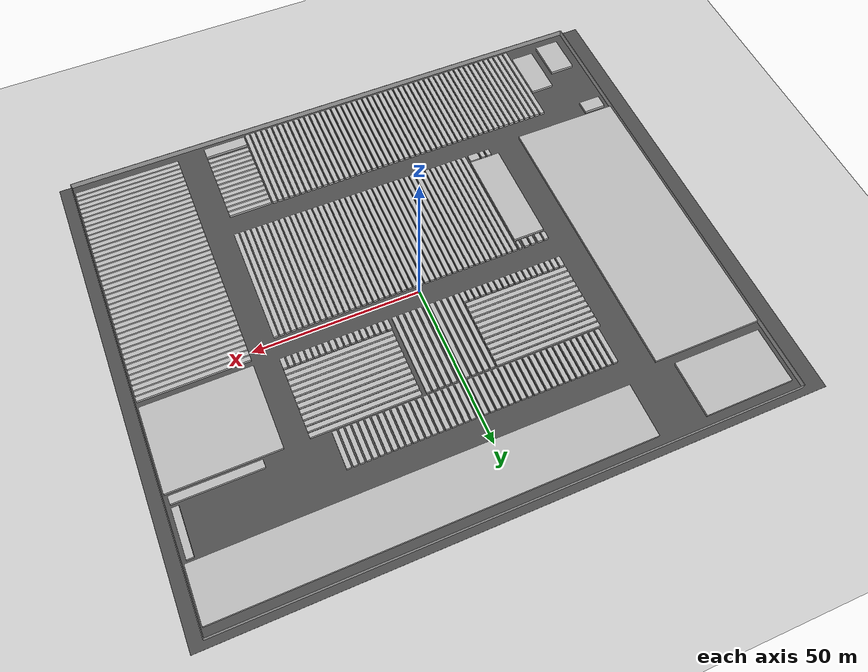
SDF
<sdf version="1.7">
 <world name="default">
  <model name="ground_plane">
   <static>1</static>
   <link name="link">
    <collision name="collision">
     <geometry><plane><normal>0 0 1</normal><size>100 100</size></plane></geometry>
     <surface>
      <contact><collide_bitmask>65535</collide_bitmask></contact>
      <friction><ode><mu>100</mu><mu2>50</mu2></ode></friction>
     </surface>
    </collision>
    <visual name="visual">
     <cast_shadows>0</cast_shadows>
     <geometry><plane><normal>0 0 1</normal><size>100 100</size></plane></geometry>
     <material>
      <script><uri>file://media/materials/scripts/gazebo.material</uri><name>Gazebo/Grey</name></script>
     </material>
    </visual>
   </link>
  </model>
  <light name="sun" type="directional">
   <pose>0 0 10 0 -0 0</pose>
   <diffuse>0.8 0.8 0.8 1</diffuse>
   <specular>0.2 0.2 0.2 1</specular>
   <attenuation>
    <range>1000</range>
    <constant>0.9</constant>
    <linear>0.01</linear>
    <quadratic>0.001</quadratic>
   </attenuation>
   <direction>-0.5 0.1 -0.9</direction>
   <spot><inner_angle>0</inner_angle><outer_angle>0</outer_angle><falloff>0</falloff></spot>
  </light>
  <model name="my_mesh">
   <pose>-0 0 -1.76828 0 -0 0</pose>
   <static>1</static>
   <link name="body">
    <visual name="visual">
     <geometry><mesh><uri>file://src/articubot_one/worlds/uber.obj</uri></mesh></geometry>
    </visual>
    <collision name="collision">
     <geometry><mesh><uri>file://src/articubot_one/worlds/uber.obj</uri></mesh></geometry>
    </collision>
    <self_collide>1</self_collide>
   </link>
  </model>
  <gravity>0 0 -9.8</gravity>
  <magnetic_field>6e-06 2.3e-05 -4.2e-05</magnetic_field>
  <atmosphere type="adiabatic"/>
  <physics type="ode">
   <max_step_size>0.001</max_step_size>
   <real_time_factor>1</real_time_factor>
   <real_time_update_rate>1000</real_time_update_rate>
  </physics>
  <scene><ambient>0.4 0.4 0.4 1</ambient><background>0.7 0.7 0.7 1</background><shadows>1</shadows></scene>
  <audio><device>default</device></audio>
  <spherical_coordinates>
   <surface_model>EARTH_WGS84</surface_model>
   <latitude_deg>0</latitude_deg>
   <longitude_deg>0</longitude_deg>
   <elevation>0</elevation>
   <heading_deg>0</heading_deg>
  </spherical_coordinates>
  <model name="asphalt_plane">
   <static>1</static>
   <link name="link">
    <collision name="collision"><geometry><box><size>176.833 145.139 0.1</size></box></geometry></collision>
    <visual name="visual">
     <cast_shadows>0</cast_shadows>
     <geometry><box><size>176.833 145.139 0.1</size></box></geometry>
     <material>
      <script>
       <uri>model://asphalt_plane/materials/scripts</uri>
       <uri>model://asphalt_plane/materials/textures</uri>
       <name>vrc/asphalt</name>
      </script>
     </material>
    </visual>
   </link>
   <pose>-1.11771 -2.68868 0 0 -0 0</pose>
  </model>
 </world>
</sdf>
